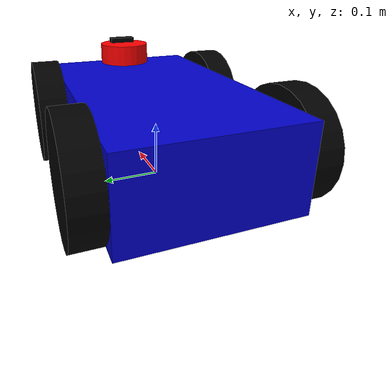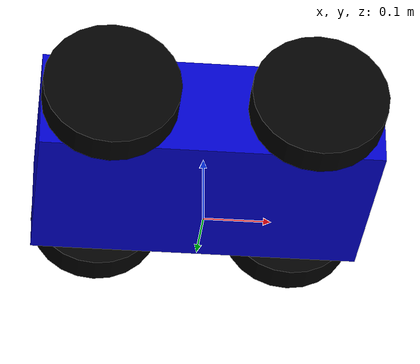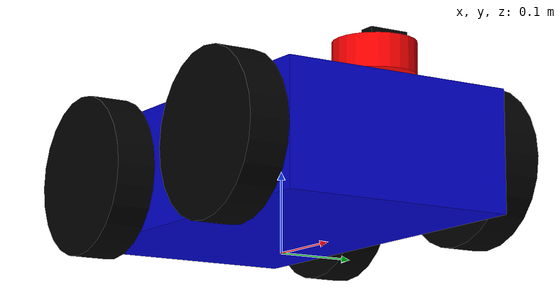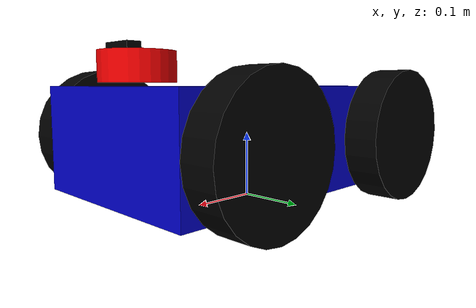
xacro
<?xml version="1.0"?>
<robot name="diff_drive_robot" xmlns:xacro="http://www.ros.org/wiki/xacro">

  <!-- Define properties for easy modification -->
  <xacro:property name="wheel_radius" value="0.1"/>
  <xacro:property name="wheel_width" value="0.05"/>
  <xacro:property name="wheel_mass" value="0.5"/>
  <xacro:property name="body_length" value="0.5"/>
  <xacro:property name="body_width" value="0.3"/>
  <xacro:property name="body_height" value="0.15"/>
  <xacro:property name="body_mass" value="10.0"/>
  <xacro:property name="wheel_offset_x" value="0.15"/>  <!-- NEW: Distance from center to front/rear wheels -->

  <!-- Dummy root link to avoid KDL warning -->
  <link name="base_footprint"/>

  <joint name="base_joint" type="fixed">
    <parent link="base_footprint"/>
    <child link="base_link"/>
    <origin xyz="0 0 0.1" rpy="0 0 0"/>
  </joint>

  <!-- Base Link (Robot Body) -->
  <link name="base_link">
    <visual>
      <geometry>
        <box size="${body_length} ${body_width} ${body_height}"/>
      </geometry>
      <material name="glow_blue">
        <color rgba="0 0 0.8 1"/>
      </material>
    </visual>
    <collision>
      <geometry>
        <box size="${body_length} ${body_width} ${body_height}"/>
      </geometry>
    </collision>
    <inertial>
      <mass value="${body_mass}"/>
      <inertia ixx="0.0625" ixy="0.0" ixz="0.0"
               iyy="0.1354" iyz="0.0"
               izz="0.1729"/>
    </inertial>
  </link>

  <!-- ==================== FRONT WHEELS ==================== -->

  <!-- Front Left Wheel -->
  <link name="front_left_wheel">
    <visual>
      <geometry>
        <cylinder radius="${wheel_radius}" length="${wheel_width}"/>
      </geometry>
      <material name="black">
        <color rgba="0 0 0 1"/>
      </material>
    </visual>
    <collision>
      <geometry>
        <cylinder radius="${wheel_radius}" length="${wheel_width}"/>
      </geometry>
    </collision>
    <inertial>
      <mass value="${wheel_mass}"/>
      <inertia ixx="0.00125" ixy="0.0" ixz="0.0"
               iyy="0.00125" iyz="0.0"
               izz="0.0025"/>
    </inertial>
  </link>

  <!-- Front Left Wheel Joint -->
  <joint name="front_left_wheel_joint" type="continuous">
    <parent link="base_link"/>
    <child link="front_left_wheel"/>
    <origin xyz="${wheel_offset_x} ${body_width/2 + wheel_width/2} 0" rpy="-1.5708 0 0"/>
    <axis xyz="0 0 1"/>
  </joint>

  <!-- Front Right Wheel -->
  <link name="front_right_wheel">
    <visual>
      <geometry>
        <cylinder radius="${wheel_radius}" length="${wheel_width}"/>
      </geometry>
      <material name="black">
        <color rgba="0 0 0 1"/>
      </material>
    </visual>
    <collision>
      <geometry>
        <cylinder radius="${wheel_radius}" length="${wheel_width}"/>
      </geometry>
    </collision>
    <inertial>
      <mass value="${wheel_mass}"/>
      <inertia ixx="0.00125" ixy="0.0" ixz="0.0"
               iyy="0.00125" iyz="0.0"
               izz="0.0025"/>
    </inertial>
  </link>

  <!-- Front Right Wheel Joint -->
  <joint name="front_right_wheel_joint" type="continuous">
    <parent link="base_link"/>
    <child link="front_right_wheel"/>
    <origin xyz="${wheel_offset_x} -${body_width/2 + wheel_width/2} 0" rpy="-1.5708 0 0"/>
    <axis xyz="0 0 1"/>
  </joint>

  <!-- ==================== REAR WHEELS ==================== -->

  <!-- Rear Left Wheel -->
  <link name="rear_left_wheel">
    <visual>
      <geometry>
        <cylinder radius="${wheel_radius}" length="${wheel_width}"/>
      </geometry>
      <material name="black">
        <color rgba="0 0 0 1"/>
      </material>
    </visual>
    <collision>
      <geometry>
        <cylinder radius="${wheel_radius}" length="${wheel_width}"/>
      </geometry>
    </collision>
    <inertial>
      <mass value="${wheel_mass}"/>
      <inertia ixx="0.00125" ixy="0.0" ixz="0.0"
               iyy="0.00125" iyz="0.0"
               izz="0.0025"/>
    </inertial>
  </link>

  <!-- Rear Left Wheel Joint -->
  <joint name="rear_left_wheel_joint" type="continuous">
    <parent link="base_link"/>
    <child link="rear_left_wheel"/>
    <origin xyz="-${wheel_offset_x} ${body_width/2 + wheel_width/2} 0" rpy="-1.5708 0 0"/>
    <axis xyz="0 0 1"/>
  </joint>

  <!-- Rear Right Wheel -->
  <link name="rear_right_wheel">
    <visual>
      <geometry>
        <cylinder radius="${wheel_radius}" length="${wheel_width}"/>
      </geometry>
      <material name="black">
        <color rgba="0 0 0 1"/>
      </material>
    </visual>
    <collision>
      <geometry>
        <cylinder radius="${wheel_radius}" length="${wheel_width}"/>
      </geometry>
    </collision>
    <inertial>
      <mass value="${wheel_mass}"/>
      <inertia ixx="0.00125" ixy="0.0" ixz="0.0"
               iyy="0.00125" iyz="0.0"
               izz="0.0025"/>
    </inertial>
  </link>

  <!-- Rear Right Wheel Joint -->
  <joint name="rear_right_wheel_joint" type="continuous">
    <parent link="base_link"/>
    <child link="rear_right_wheel"/>
    <origin xyz="-${wheel_offset_x} -${body_width/2 + wheel_width/2} 0" rpy="-1.5708 0 0"/>
    <axis xyz="0 0 1"/>
  </joint>

    <!-- ==================== 2D LiDAR SENSOR ==================== -->

  <link name="lidar_link">
    <visual>
      <geometry>
        <cylinder radius="0.05" length="0.04"/>
      </geometry>
      <material name="red">
        <color rgba="1 0 0 1"/>
      </material>
    </visual>
    <collision>
      <geometry>
        <cylinder radius="0.05" length="0.04"/>
      </geometry>
    </collision>
    <inertial>
      <mass value="0.1"/>
      <inertia ixx="0.0001" ixy="0.0" ixz="0.0"
               iyy="0.0001" iyz="0.0"
               izz="0.0001"/>
    </inertial>
  </link>

  <!-- LiDAR Joint -->
  <joint name="lidar_joint" type="fixed">
    <parent link="base_link"/>
    <child link="lidar_link"/>
    <origin xyz="0.2 0 0.1" rpy="0 0 0"/>
  </joint>

  <!-- ==================== CAMERA SENSOR ==================== -->

  <link name="camera_link">
    <visual>
      <geometry>
        <box size="0.02 0.05 0.02"/>
      </geometry>
      <material name="black">
        <color rgba="0 0 0 1"/>
      </material>
    </visual>
    <collision>
      <geometry>
        <box size="0.02 0.05 0.02"/>
      </geometry>
    </collision>
    <inertial>
      <mass value="0.05"/>
      <inertia ixx="0.0001" ixy="0.0" ixz="0.0"
               iyy="0.0001" iyz="0.0"
               izz="0.0001"/>
    </inertial>
  </link>

  <!-- Camera Joint - Mounted on front, slightly higher than LiDAR -->
  <joint name="camera_joint" type="fixed">
    <parent link="base_link"/>
    <child link="camera_link"/>
    <origin xyz="0.22 0 0.12" rpy="0 0 0"/>
  </joint>

  <!-- Camera Optical Frame (required for ROS convention) -->
  <link name="camera_optical_link"/>

  <joint name="camera_optical_joint" type="fixed">
    <parent link="camera_link"/>
    <child link="camera_optical_link"/>
    <origin xyz="0 0 0" rpy="${-pi/2} 0 ${-pi/2}"/>
  </joint>

</robot>
